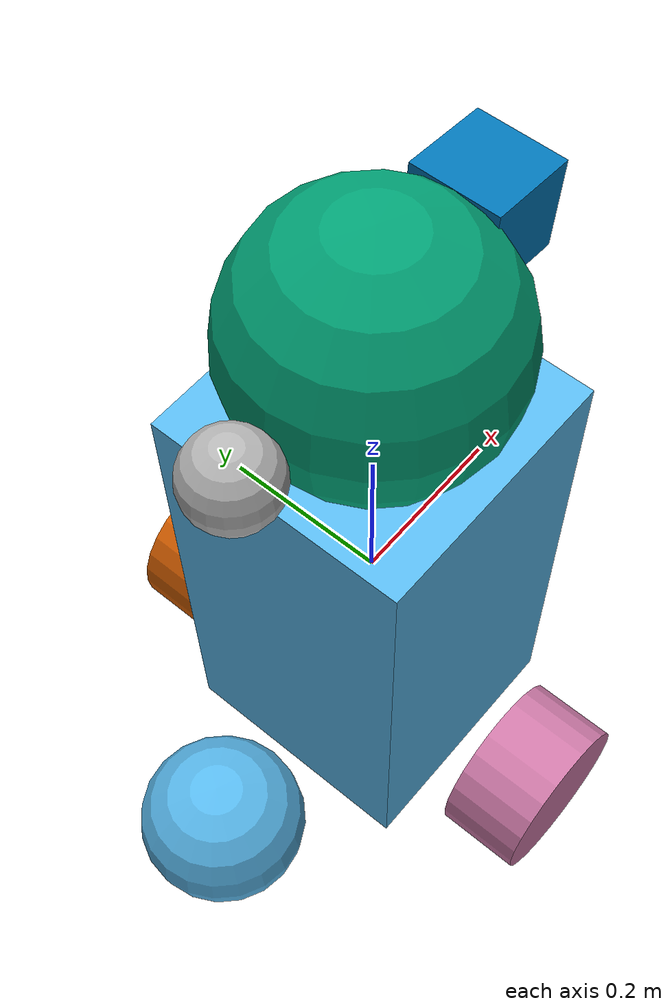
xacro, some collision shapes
<?xml version='1.0'?>

<robot name="udacity_bot" xmlns:xacro="http://www.ros.org/wiki/xacro">
	<xacro:include filename="$(find udacity_bot)/urdf/marvin_bot.gazebo" />

	<link name="robot_footprint"></link>

	<joint name="robot_footprint_joint" type="fixed">
		<origin xyz="0 0 0" rpy="0 0 0" />
	    	<parent link="robot_footprint"/>
	   	<child link="chassis" />
	</joint>

	<link name="chassis">

		<pose>0 0 0.0 0 0 0</pose>

		<inertial>
	      		<mass value="8.0"/>
	      		<origin xyz="0.0 0 0" rpy=" 0 0 0"/>
	      		<inertia
			  ixx="0.1" ixy="0" ixz="0"
			  iyy="0.1" iyz="0"
			  izz="0.1"
	      		/>
	    	</inertial>

		<collision name='collision'>
	      		<origin xyz="0 0 0" rpy=" 0 0 0"/>
		        <geometry>
				<box size=".3 .3 .6"/>
		      	</geometry>
	    	</collision>

    		<visual name='chassis_visual'>
      			<origin xyz="0 0 0" rpy=" 0 0 0"/>
      			<geometry>
        			<box size=".3 .3 .6"/>
      			</geometry>
    		</visual>

		<collision name='collision_caster'>
	      		<origin xyz="-0.28 0 -0.25" rpy=" 0 0 0"/>
		        <geometry>
				<sphere radius="0.1"/>
		      	</geometry>
		      <surface>
			<friction>
			  <ode>
			    <mu>0</mu>
			    <mu2>0</mu2>
			    <slip1>5.0</slip1>
			    <slip2>5.0</slip2>
			  </ode>
			</friction>
		      </surface>
	    	</collision>

    		<visual name='visual_caster'>
      			<origin xyz="-0.28 0 -0.25" rpy=" 0 0 0"/>
      			<geometry>
        			<sphere radius="0.1"/>
      			</geometry>
    		</visual>

	</link>

	<link name="head">
		<pose>0 0 0 0 0 0</pose>
		<inertial>
	      		<mass value="2.0"/>
	      		<origin xyz="0.0 0 0" rpy=" 0 0 0"/>
	      		<inertia
			  ixx="0.1" ixy="0" ixz="0"
			  iyy="0.1" iyz="0"
			  izz="0.1"
	      		/>
	    	</inertial>

		<collision>
			<origin xyz="0.0 0 0" rpy=" 0 0 0"/>
			<geometry>
				<sphere radius="0.15" />
			</geometry>
		</collision>
		<visual>
			<origin xyz="0.0 0 0" rpy=" 0 0 0"/>
			<geometry>
				<sphere radius="0.15" />
			</geometry>
		</visual>
	</link>

	<joint name="robot_head_joint" type="fixed">
		<origin xyz="0 0 0.4" rpy="0 0 0" />
	    	<parent link="chassis"/>
	   	<child link="head" />
	</joint>

	<link name="camera">
	    <pose>0 0 0 0 0 0</pose>
	    <inertial>
	       <mass value="0.1"/>
	       <origin xyz="0 0 0" rpy="0 0 0"/>
	       <inertia
		 ixx="1e-6" ixy="0" ixz="0"
		 iyy="1e-6" iyz="0"
		 izz="1e-6"
		/>
	    </inertial>

	    <collision>
	       <origin xyz="0 0 0" rpy="0 0 0"/>
	       <geometry>
		  <box size="0.05 0.05 0.05" />
	       </geometry>
	    </collision>

	    <visual>
	       <origin xyz="0 0 0" rpy="0 0 0"/>
	       <geometry>
		  <box size="0.05 0.05 0.05" />
	       </geometry>
	    </visual>
  	</link>

	<joint type="fixed" name="camera_joint">
	    <origin xyz="0.15 0 -0.05" rpy="0.0 0.5 0"/>
	    <child link="camera"/>
	    <parent link="head"/>
	    <axis xyz="0 1 0" rpy="0 0 0"/>
	    <limit effort="10000" velocity="1000"/>
	    <joint_properties damping="1.0" friction="1.0"/>
	</joint>

	  <link name="hokuyo">
	    <pose>0 0 0 0 0 0</pose>
	    <inertial>
	       <mass value="0.1"/>
	       <origin xyz="0 0 0" rpy="0 0 0"/>
	       <inertia
		 ixx="1e-6" ixy="0" ixz="0"
		 iyy="1e-6" iyz="0"
		 izz="1e-6"
		/>
	    </inertial>

	    <collision>
	       <origin xyz="0 0 0" rpy="0 0 0"/>
	       <geometry>
		  <box size="0.1 0.1 0.1" />
	       </geometry>
	    </collision>

	    <visual>
	       <origin xyz="0 0 0" rpy="0 0 0"/>
	       <geometry>
		  <mesh filename="package://udacity_bot/meshes/hokuyo.dae"/>
	       </geometry>
	    </visual>
	  </link>

	  <joint type="fixed" name="hokuyo_joint">
	    <origin xyz="0.15 0 0.05" rpy="0 0.1 0"/>
	    <child link="hokuyo"/>
	    <parent link="head"/>
	    <axis xyz="0 1 0" rpy="0 0 0"/>
	    <limit effort="10000" velocity="1000"/>
	    <joint_properties damping="1.0" friction="1.0"/>
	  </joint>

  <link name="left_wheel">
    <pose>0 0 0 0 1.5707 1.5707</pose>

    <inertial>
       <mass value="5.0"/>
          <origin xyz="0 0 0" rpy="0 1.5707 1.5707"/>
	     <inertia
		  ixx="0.1" ixy="0" ixz="0"
		  iyy="0.1" iyz="0"
		  izz="0.1"
	      />
    </inertial>

    <collision>
       <origin xyz="0 0 0" rpy="0 1.5707 1.5707" />
       <geometry>
          <cylinder radius="0.1" length="0.05" />
       </geometry>
    </collision>

    <visual>
       <origin xyz="0 0 0" rpy="0 1.5707 1.5707" />
       <geometry>
          <cylinder radius="0.1" length="0.1" />
       </geometry>
    </visual>

  </link>

  <joint type="continuous" name="left_wheel_hinge">
    <origin xyz="0 0.25 -0.25" rpy="0 0 0"/>
    <child link="left_wheel"/>
    <parent link="chassis"/>
    <axis xyz="0 1 0" rpy="0 0 0"/>
    <limit effort="100000" velocity="10000"/>
    <joint_properties damping="1.0" friction="1.0"/>
  </joint>

  <link name="right_wheel">
    <pose>0 0 0 0 1.5707 1.5707</pose>

    <inertial>
       <mass value="5.0"/>
          <origin xyz="0 0 0" rpy="0 1.5707 1.5707"/>
	     <inertia
		  ixx="0.1" ixy="0" ixz="0"
		  iyy="0.1" iyz="0"
		  izz="0.1"
	      />
    </inertial>

    <collision>
       <origin xyz="0 0 0" rpy="0 1.5707 1.5707" />
       <geometry>
          <cylinder radius="0.2" length="0.1" />
       </geometry>
    </collision>

    <visual>
       <origin xyz="0 0 0" rpy="0 1.5707 1.5707" />
       <geometry>
          <cylinder radius="0.1" length="0.1" />
       </geometry>
    </visual>

  </link>

  <joint type="continuous" name="right_wheel_hinge">
    <origin xyz="0 -0.25 -0.25" rpy="0 0 0"/>
    <child link="right_wheel"/>
    <parent link="chassis"/>
    <axis xyz="0 1 0" rpy="0 0 0"/>
    <limit effort="100000" velocity="10000"/>
    <joint_properties damping="1.0" friction="1.0"/>
  </joint>

	<link name="stabilizer">
		<pose>0 0 0.0 0 0 0</pose>

		<inertial>
	      		<mass value="0.2"/>
	      		<origin xyz="0.0 0 0" rpy=" 0 0 0"/>
	      		<inertia
			 ixx="1e-6" ixy="0" ixz="0"
			 iyy="1e-6" iyz="0"
			 izz="1e-6"
			/>
	    	</inertial>

		<collision name='collision'>
	      		<origin xyz="0 0 0" rpy=" 0 0 0"/>
		        <geometry>
				<sphere radius="0.05"/>
		      	</geometry>
	    	</collision>

    		<visual name='chassis_visual'>
      			<origin xyz="0 0 0" rpy=" 0 0 0"/>
      			<geometry>
        			<sphere radius="0.05"/>
      			</geometry>
    		</visual>

	</link>

	<joint name="stabilizer_joint" type="fixed">
		<origin xyz="-0.19 0 0.4" rpy="0 0 0" />
	    	<parent link="chassis"/>
	   	<child link="stabilizer" />
	</joint>

</robot>
